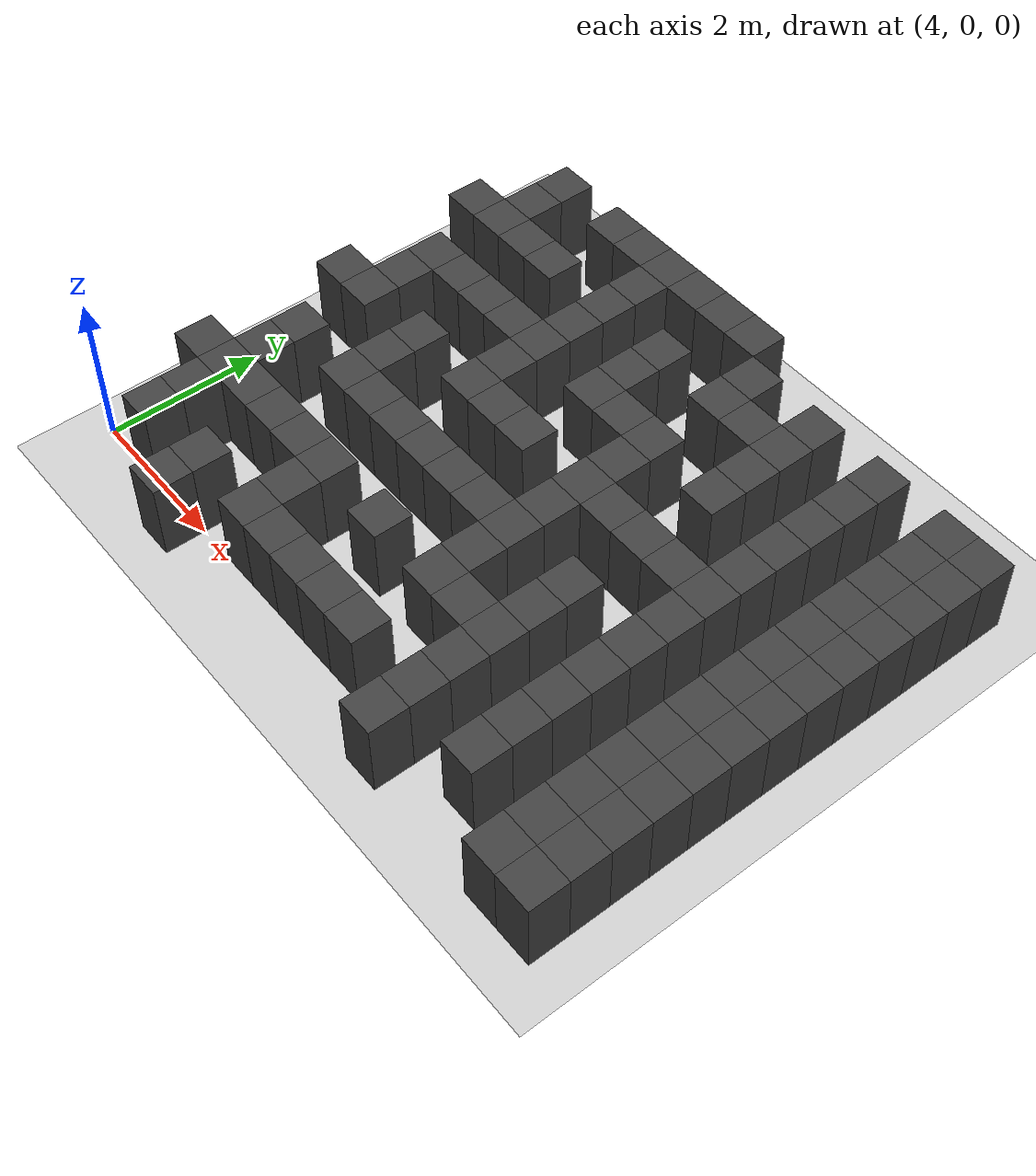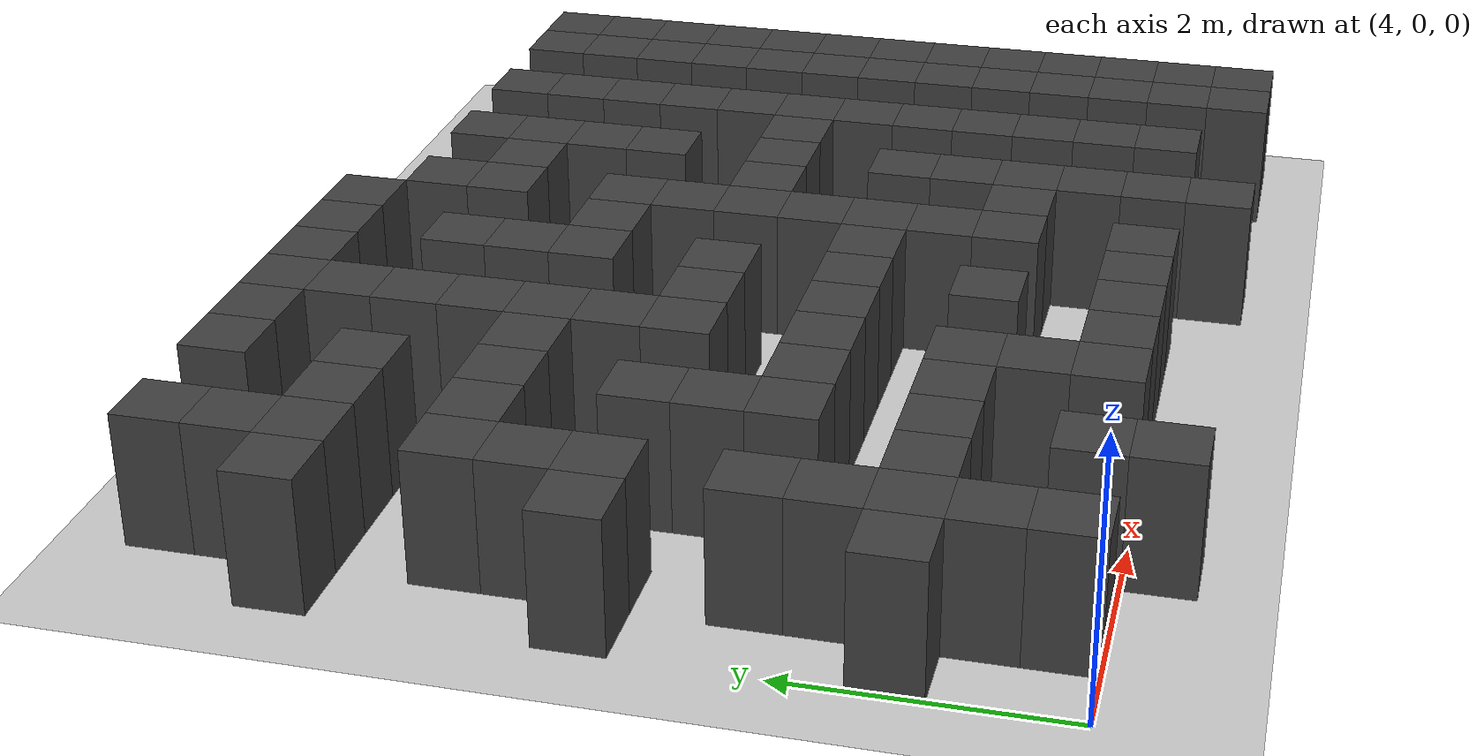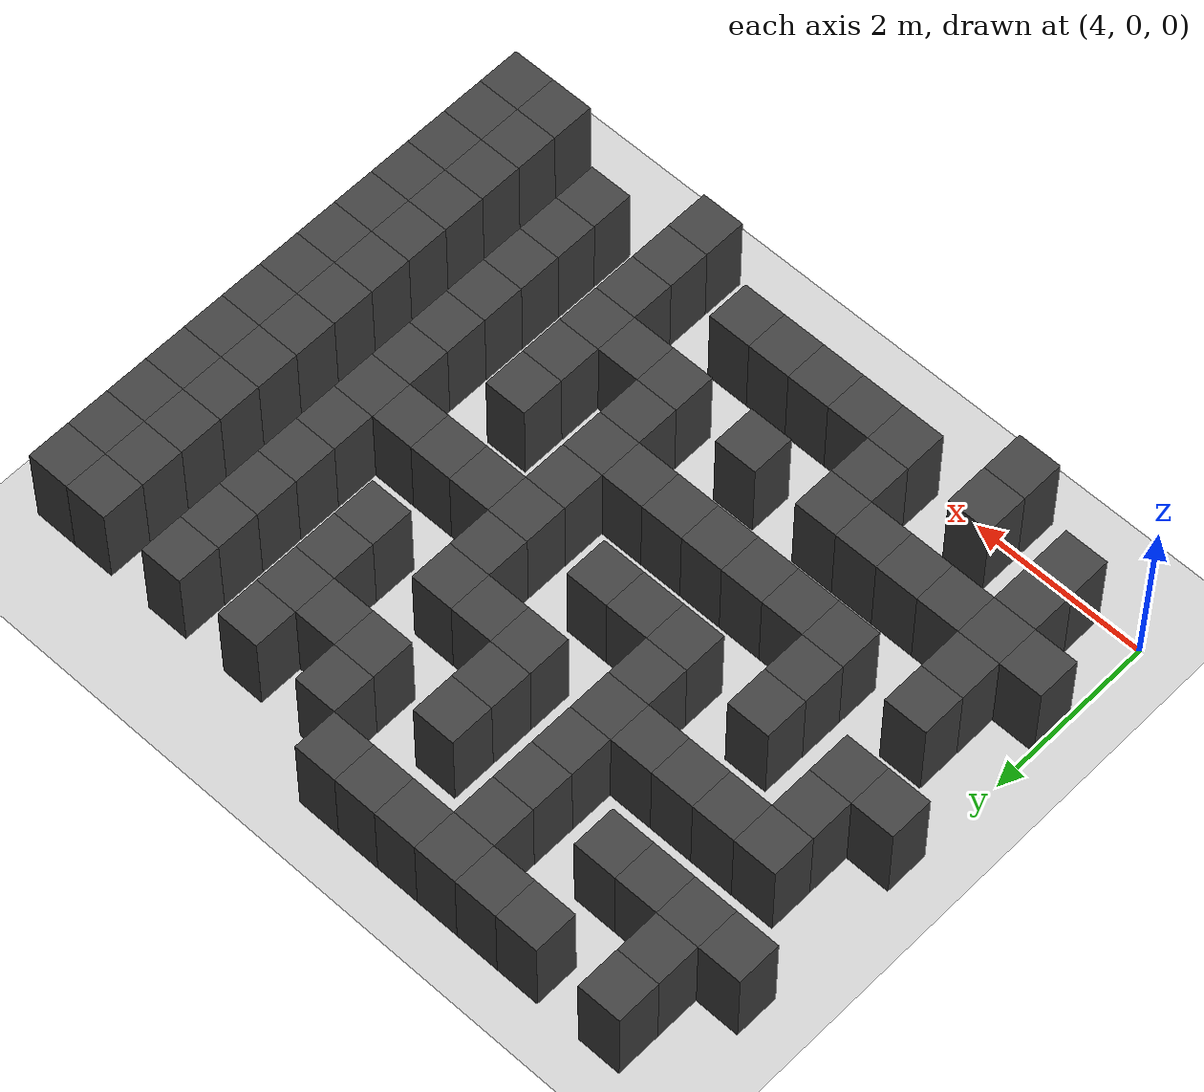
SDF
<sdf version="1.7">
 <world name="map_18814">
  <model name="ground_plane">
   <static>true</static>
   <link name="link">
    <collision name="collision">
     <geometry><plane><normal>0 0 1</normal><size>200 200</size></plane></geometry>
    </collision>
    <visual name="visual">
     <geometry><plane><normal>0 0 1</normal><size>200 200</size></plane></geometry>
     <material><ambient>0.8 0.8 0.8 1</ambient><diffuse>0.8 0.8 0.8 1</diffuse></material>
    </visual>
   </link>
  </model>
  <model name="maze_environment">
   <static>true</static>
   <link name="wall_333">
    <pose>4.750 6.250 0.500 0 0 0</pose>
    <collision name="col"><geometry><box><size>0.5 0.5 1.0</size></box></geometry></collision>
    <visual name="vis">
     <geometry><box><size>0.5 0.5 1.0</size></box></geometry>
     <material><ambient>0.15 0.15 0.15 1</ambient><diffuse>0.25 0.25 0.25 1</diffuse></material>
    </visual>
   </link>
   <link name="wall_334">
    <pose>5.750 6.250 0.500 0 0 0</pose>
    <collision name="col"><geometry><box><size>0.5 0.5 1.0</size></box></geometry></collision>
    <visual name="vis">
     <geometry><box><size>0.5 0.5 1.0</size></box></geometry>
     <material><ambient>0.15 0.15 0.15 1</ambient><diffuse>0.25 0.25 0.25 1</diffuse></material>
    </visual>
   </link>
   <link name="wall_335">
    <pose>6.250 6.250 0.500 0 0 0</pose>
    <collision name="col"><geometry><box><size>0.5 0.5 1.0</size></box></geometry></collision>
    <visual name="vis">
     <geometry><box><size>0.5 0.5 1.0</size></box></geometry>
     <material><ambient>0.15 0.15 0.15 1</ambient><diffuse>0.25 0.25 0.25 1</diffuse></material>
    </visual>
   </link>
   <link name="wall_336">
    <pose>6.750 6.250 0.500 0 0 0</pose>
    <collision name="col"><geometry><box><size>0.5 0.5 1.0</size></box></geometry></collision>
    <visual name="vis">
     <geometry><box><size>0.5 0.5 1.0</size></box></geometry>
     <material><ambient>0.15 0.15 0.15 1</ambient><diffuse>0.25 0.25 0.25 1</diffuse></material>
    </visual>
   </link>
   <link name="wall_337">
    <pose>7.250 6.250 0.500 0 0 0</pose>
    <collision name="col"><geometry><box><size>0.5 0.5 1.0</size></box></geometry></collision>
    <visual name="vis">
     <geometry><box><size>0.5 0.5 1.0</size></box></geometry>
     <material><ambient>0.15 0.15 0.15 1</ambient><diffuse>0.25 0.25 0.25 1</diffuse></material>
    </visual>
   </link>
   <link name="wall_338">
    <pose>7.750 6.250 0.500 0 0 0</pose>
    <collision name="col"><geometry><box><size>0.5 0.5 1.0</size></box></geometry></collision>
    <visual name="vis">
     <geometry><box><size>0.5 0.5 1.0</size></box></geometry>
     <material><ambient>0.15 0.15 0.15 1</ambient><diffuse>0.25 0.25 0.25 1</diffuse></material>
    </visual>
   </link>
   <link name="wall_339">
    <pose>8.250 6.250 0.500 0 0 0</pose>
    <collision name="col"><geometry><box><size>0.5 0.5 1.0</size></box></geometry></collision>
    <visual name="vis">
     <geometry><box><size>0.5 0.5 1.0</size></box></geometry>
     <material><ambient>0.15 0.15 0.15 1</ambient><diffuse>0.25 0.25 0.25 1</diffuse></material>
    </visual>
   </link>
   <link name="wall_352">
    <pose>4.750 5.750 0.500 0 0 0</pose>
    <collision name="col"><geometry><box><size>0.5 0.5 1.0</size></box></geometry></collision>
    <visual name="vis">
     <geometry><box><size>0.5 0.5 1.0</size></box></geometry>
     <material><ambient>0.15 0.15 0.15 1</ambient><diffuse>0.25 0.25 0.25 1</diffuse></material>
    </visual>
   </link>
   <link name="wall_353">
    <pose>6.750 5.750 0.500 0 0 0</pose>
    <collision name="col"><geometry><box><size>0.5 0.5 1.0</size></box></geometry></collision>
    <visual name="vis">
     <geometry><box><size>0.5 0.5 1.0</size></box></geometry>
     <material><ambient>0.15 0.15 0.15 1</ambient><diffuse>0.25 0.25 0.25 1</diffuse></material>
    </visual>
   </link>
   <link name="wall_354">
    <pose>8.750 5.750 0.500 0 0 0</pose>
    <collision name="col"><geometry><box><size>0.5 0.5 1.0</size></box></geometry></collision>
    <visual name="vis">
     <geometry><box><size>0.5 0.5 1.0</size></box></geometry>
     <material><ambient>0.15 0.15 0.15 1</ambient><diffuse>0.25 0.25 0.25 1</diffuse></material>
    </visual>
   </link>
   <link name="wall_355">
    <pose>9.750 5.750 0.500 0 0 0</pose>
    <collision name="col"><geometry><box><size>0.5 0.5 1.0</size></box></geometry></collision>
    <visual name="vis">
     <geometry><box><size>0.5 0.5 1.0</size></box></geometry>
     <material><ambient>0.15 0.15 0.15 1</ambient><diffuse>0.25 0.25 0.25 1</diffuse></material>
    </visual>
   </link>
   <link name="wall_356">
    <pose>10.750 5.750 0.500 0 0 0</pose>
    <collision name="col"><geometry><box><size>0.5 0.5 1.0</size></box></geometry></collision>
    <visual name="vis">
     <geometry><box><size>0.5 0.5 1.0</size></box></geometry>
     <material><ambient>0.15 0.15 0.15 1</ambient><diffuse>0.25 0.25 0.25 1</diffuse></material>
    </visual>
   </link>
   <link name="wall_357">
    <pose>11.750 5.750 0.500 0 0 0</pose>
    <collision name="col"><geometry><box><size>0.5 0.5 1.0</size></box></geometry></collision>
    <visual name="vis">
     <geometry><box><size>0.5 0.5 1.0</size></box></geometry>
     <material><ambient>0.15 0.15 0.15 1</ambient><diffuse>0.25 0.25 0.25 1</diffuse></material>
    </visual>
   </link>
   <link name="wall_358">
    <pose>12.250 5.750 0.500 0 0 0</pose>
    <collision name="col"><geometry><box><size>0.5 0.5 1.0</size></box></geometry></collision>
    <visual name="vis">
     <geometry><box><size>0.5 0.5 1.0</size></box></geometry>
     <material><ambient>0.15 0.15 0.15 1</ambient><diffuse>0.25 0.25 0.25 1</diffuse></material>
    </visual>
   </link>
   <link name="wall_384">
    <pose>4.250 5.250 0.500 0 0 0</pose>
    <collision name="col"><geometry><box><size>0.5 0.5 1.0</size></box></geometry></collision>
    <visual name="vis">
     <geometry><box><size>0.5 0.5 1.0</size></box></geometry>
     <material><ambient>0.15 0.15 0.15 1</ambient><diffuse>0.25 0.25 0.25 1</diffuse></material>
    </visual>
   </link>
   <link name="wall_385">
    <pose>4.750 5.250 0.500 0 0 0</pose>
    <collision name="col"><geometry><box><size>0.5 0.5 1.0</size></box></geometry></collision>
    <visual name="vis">
     <geometry><box><size>0.5 0.5 1.0</size></box></geometry>
     <material><ambient>0.15 0.15 0.15 1</ambient><diffuse>0.25 0.25 0.25 1</diffuse></material>
    </visual>
   </link>
   <link name="wall_386">
    <pose>5.250 5.250 0.500 0 0 0</pose>
    <collision name="col"><geometry><box><size>0.5 0.5 1.0</size></box></geometry></collision>
    <visual name="vis">
     <geometry><box><size>0.5 0.5 1.0</size></box></geometry>
     <material><ambient>0.15 0.15 0.15 1</ambient><diffuse>0.25 0.25 0.25 1</diffuse></material>
    </visual>
   </link>
   <link name="wall_387">
    <pose>5.750 5.250 0.500 0 0 0</pose>
    <collision name="col"><geometry><box><size>0.5 0.5 1.0</size></box></geometry></collision>
    <visual name="vis">
     <geometry><box><size>0.5 0.5 1.0</size></box></geometry>
     <material><ambient>0.15 0.15 0.15 1</ambient><diffuse>0.25 0.25 0.25 1</diffuse></material>
    </visual>
   </link>
   <link name="wall_388">
    <pose>6.750 5.250 0.500 0 0 0</pose>
    <collision name="col"><geometry><box><size>0.5 0.5 1.0</size></box></geometry></collision>
    <visual name="vis">
     <geometry><box><size>0.5 0.5 1.0</size></box></geometry>
     <material><ambient>0.15 0.15 0.15 1</ambient><diffuse>0.25 0.25 0.25 1</diffuse></material>
    </visual>
   </link>
   <link name="wall_389">
    <pose>7.750 5.250 0.500 0 0 0</pose>
    <collision name="col"><geometry><box><size>0.5 0.5 1.0</size></box></geometry></collision>
    <visual name="vis">
     <geometry><box><size>0.5 0.5 1.0</size></box></geometry>
     <material><ambient>0.15 0.15 0.15 1</ambient><diffuse>0.25 0.25 0.25 1</diffuse></material>
    </visual>
   </link>
   <link name="wall_390">
    <pose>8.750 5.250 0.500 0 0 0</pose>
    <collision name="col"><geometry><box><size>0.5 0.5 1.0</size></box></geometry></collision>
    <visual name="vis">
     <geometry><box><size>0.5 0.5 1.0</size></box></geometry>
     <material><ambient>0.15 0.15 0.15 1</ambient><diffuse>0.25 0.25 0.25 1</diffuse></material>
    </visual>
   </link>
   <link name="wall_391">
    <pose>9.250 5.250 0.500 0 0 0</pose>
    <collision name="col"><geometry><box><size>0.5 0.5 1.0</size></box></geometry></collision>
    <visual name="vis">
     <geometry><box><size>0.5 0.5 1.0</size></box></geometry>
     <material><ambient>0.15 0.15 0.15 1</ambient><diffuse>0.25 0.25 0.25 1</diffuse></material>
    </visual>
   </link>
   <link name="wall_392">
    <pose>9.750 5.250 0.500 0 0 0</pose>
    <collision name="col"><geometry><box><size>0.5 0.5 1.0</size></box></geometry></collision>
    <visual name="vis">
     <geometry><box><size>0.5 0.5 1.0</size></box></geometry>
     <material><ambient>0.15 0.15 0.15 1</ambient><diffuse>0.25 0.25 0.25 1</diffuse></material>
    </visual>
   </link>
   <link name="wall_393">
    <pose>10.750 5.250 0.500 0 0 0</pose>
    <collision name="col"><geometry><box><size>0.5 0.5 1.0</size></box></geometry></collision>
    <visual name="vis">
     <geometry><box><size>0.5 0.5 1.0</size></box></geometry>
     <material><ambient>0.15 0.15 0.15 1</ambient><diffuse>0.25 0.25 0.25 1</diffuse></material>
    </visual>
   </link>
   <link name="wall_394">
    <pose>11.750 5.250 0.500 0 0 0</pose>
    <collision name="col"><geometry><box><size>0.5 0.5 1.0</size></box></geometry></collision>
    <visual name="vis">
     <geometry><box><size>0.5 0.5 1.0</size></box></geometry>
     <material><ambient>0.15 0.15 0.15 1</ambient><diffuse>0.25 0.25 0.25 1</diffuse></material>
    </visual>
   </link>
   <link name="wall_395">
    <pose>12.250 5.250 0.500 0 0 0</pose>
    <collision name="col"><geometry><box><size>0.5 0.5 1.0</size></box></geometry></collision>
    <visual name="vis">
     <geometry><box><size>0.5 0.5 1.0</size></box></geometry>
     <material><ambient>0.15 0.15 0.15 1</ambient><diffuse>0.25 0.25 0.25 1</diffuse></material>
    </visual>
   </link>
   <link name="wall_404">
    <pose>6.750 4.750 0.500 0 0 0</pose>
    <collision name="col"><geometry><box><size>0.5 0.5 1.0</size></box></geometry></collision>
    <visual name="vis">
     <geometry><box><size>0.5 0.5 1.0</size></box></geometry>
     <material><ambient>0.15 0.15 0.15 1</ambient><diffuse>0.25 0.25 0.25 1</diffuse></material>
    </visual>
   </link>
   <link name="wall_405">
    <pose>7.750 4.750 0.500 0 0 0</pose>
    <collision name="col"><geometry><box><size>0.5 0.5 1.0</size></box></geometry></collision>
    <visual name="vis">
     <geometry><box><size>0.5 0.5 1.0</size></box></geometry>
     <material><ambient>0.15 0.15 0.15 1</ambient><diffuse>0.25 0.25 0.25 1</diffuse></material>
    </visual>
   </link>
   <link name="wall_406">
    <pose>9.750 4.750 0.500 0 0 0</pose>
    <collision name="col"><geometry><box><size>0.5 0.5 1.0</size></box></geometry></collision>
    <visual name="vis">
     <geometry><box><size>0.5 0.5 1.0</size></box></geometry>
     <material><ambient>0.15 0.15 0.15 1</ambient><diffuse>0.25 0.25 0.25 1</diffuse></material>
    </visual>
   </link>
   <link name="wall_407">
    <pose>10.750 4.750 0.500 0 0 0</pose>
    <collision name="col"><geometry><box><size>0.5 0.5 1.0</size></box></geometry></collision>
    <visual name="vis">
     <geometry><box><size>0.5 0.5 1.0</size></box></geometry>
     <material><ambient>0.15 0.15 0.15 1</ambient><diffuse>0.25 0.25 0.25 1</diffuse></material>
    </visual>
   </link>
   <link name="wall_408">
    <pose>11.750 4.750 0.500 0 0 0</pose>
    <collision name="col"><geometry><box><size>0.5 0.5 1.0</size></box></geometry></collision>
    <visual name="vis">
     <geometry><box><size>0.5 0.5 1.0</size></box></geometry>
     <material><ambient>0.15 0.15 0.15 1</ambient><diffuse>0.25 0.25 0.25 1</diffuse></material>
    </visual>
   </link>
   <link name="wall_409">
    <pose>12.250 4.750 0.500 0 0 0</pose>
    <collision name="col"><geometry><box><size>0.5 0.5 1.0</size></box></geometry></collision>
    <visual name="vis">
     <geometry><box><size>0.5 0.5 1.0</size></box></geometry>
     <material><ambient>0.15 0.15 0.15 1</ambient><diffuse>0.25 0.25 0.25 1</diffuse></material>
    </visual>
   </link>
   <link name="wall_434">
    <pose>4.750 4.250 0.500 0 0 0</pose>
    <collision name="col"><geometry><box><size>0.5 0.5 1.0</size></box></geometry></collision>
    <visual name="vis">
     <geometry><box><size>0.5 0.5 1.0</size></box></geometry>
     <material><ambient>0.15 0.15 0.15 1</ambient><diffuse>0.25 0.25 0.25 1</diffuse></material>
    </visual>
   </link>
   <link name="wall_435">
    <pose>5.250 4.250 0.500 0 0 0</pose>
    <collision name="col"><geometry><box><size>0.5 0.5 1.0</size></box></geometry></collision>
    <visual name="vis">
     <geometry><box><size>0.5 0.5 1.0</size></box></geometry>
     <material><ambient>0.15 0.15 0.15 1</ambient><diffuse>0.25 0.25 0.25 1</diffuse></material>
    </visual>
   </link>
   <link name="wall_436">
    <pose>5.750 4.250 0.500 0 0 0</pose>
    <collision name="col"><geometry><box><size>0.5 0.5 1.0</size></box></geometry></collision>
    <visual name="vis">
     <geometry><box><size>0.5 0.5 1.0</size></box></geometry>
     <material><ambient>0.15 0.15 0.15 1</ambient><diffuse>0.25 0.25 0.25 1</diffuse></material>
    </visual>
   </link>
   <link name="wall_437">
    <pose>6.250 4.250 0.500 0 0 0</pose>
    <collision name="col"><geometry><box><size>0.5 0.5 1.0</size></box></geometry></collision>
    <visual name="vis">
     <geometry><box><size>0.5 0.5 1.0</size></box></geometry>
     <material><ambient>0.15 0.15 0.15 1</ambient><diffuse>0.25 0.25 0.25 1</diffuse></material>
    </visual>
   </link>
   <link name="wall_438">
    <pose>6.750 4.250 0.500 0 0 0</pose>
    <collision name="col"><geometry><box><size>0.5 0.5 1.0</size></box></geometry></collision>
    <visual name="vis">
     <geometry><box><size>0.5 0.5 1.0</size></box></geometry>
     <material><ambient>0.15 0.15 0.15 1</ambient><diffuse>0.25 0.25 0.25 1</diffuse></material>
    </visual>
   </link>
   <link name="wall_439">
    <pose>7.750 4.250 0.500 0 0 0</pose>
    <collision name="col"><geometry><box><size>0.5 0.5 1.0</size></box></geometry></collision>
    <visual name="vis">
     <geometry><box><size>0.5 0.5 1.0</size></box></geometry>
     <material><ambient>0.15 0.15 0.15 1</ambient><diffuse>0.25 0.25 0.25 1</diffuse></material>
    </visual>
   </link>
   <link name="wall_440">
    <pose>8.250 4.250 0.500 0 0 0</pose>
    <collision name="col"><geometry><box><size>0.5 0.5 1.0</size></box></geometry></collision>
    <visual name="vis">
     <geometry><box><size>0.5 0.5 1.0</size></box></geometry>
     <material><ambient>0.15 0.15 0.15 1</ambient><diffuse>0.25 0.25 0.25 1</diffuse></material>
    </visual>
   </link>
   <link name="wall_441">
    <pose>8.750 4.250 0.500 0 0 0</pose>
    <collision name="col"><geometry><box><size>0.5 0.5 1.0</size></box></geometry></collision>
    <visual name="vis">
     <geometry><box><size>0.5 0.5 1.0</size></box></geometry>
     <material><ambient>0.15 0.15 0.15 1</ambient><diffuse>0.25 0.25 0.25 1</diffuse></material>
    </visual>
   </link>
   <link name="wall_442">
    <pose>9.750 4.250 0.500 0 0 0</pose>
    <collision name="col"><geometry><box><size>0.5 0.5 1.0</size></box></geometry></collision>
    <visual name="vis">
     <geometry><box><size>0.5 0.5 1.0</size></box></geometry>
     <material><ambient>0.15 0.15 0.15 1</ambient><diffuse>0.25 0.25 0.25 1</diffuse></material>
    </visual>
   </link>
   <link name="wall_443">
    <pose>10.750 4.250 0.500 0 0 0</pose>
    <collision name="col"><geometry><box><size>0.5 0.5 1.0</size></box></geometry></collision>
    <visual name="vis">
     <geometry><box><size>0.5 0.5 1.0</size></box></geometry>
     <material><ambient>0.15 0.15 0.15 1</ambient><diffuse>0.25 0.25 0.25 1</diffuse></material>
    </visual>
   </link>
   <link name="wall_444">
    <pose>11.750 4.250 0.500 0 0 0</pose>
    <collision name="col"><geometry><box><size>0.5 0.5 1.0</size></box></geometry></collision>
    <visual name="vis">
     <geometry><box><size>0.5 0.5 1.0</size></box></geometry>
     <material><ambient>0.15 0.15 0.15 1</ambient><diffuse>0.25 0.25 0.25 1</diffuse></material>
    </visual>
   </link>
   <link name="wall_445">
    <pose>12.250 4.250 0.500 0 0 0</pose>
    <collision name="col"><geometry><box><size>0.5 0.5 1.0</size></box></geometry></collision>
    <visual name="vis">
     <geometry><box><size>0.5 0.5 1.0</size></box></geometry>
     <material><ambient>0.15 0.15 0.15 1</ambient><diffuse>0.25 0.25 0.25 1</diffuse></material>
    </visual>
   </link>
   <link name="wall_455">
    <pose>4.750 3.750 0.500 0 0 0</pose>
    <collision name="col"><geometry><box><size>0.5 0.5 1.0</size></box></geometry></collision>
    <visual name="vis">
     <geometry><box><size>0.5 0.5 1.0</size></box></geometry>
     <material><ambient>0.15 0.15 0.15 1</ambient><diffuse>0.25 0.25 0.25 1</diffuse></material>
    </visual>
   </link>
   <link name="wall_456">
    <pose>6.750 3.750 0.500 0 0 0</pose>
    <collision name="col"><geometry><box><size>0.5 0.5 1.0</size></box></geometry></collision>
    <visual name="vis">
     <geometry><box><size>0.5 0.5 1.0</size></box></geometry>
     <material><ambient>0.15 0.15 0.15 1</ambient><diffuse>0.25 0.25 0.25 1</diffuse></material>
    </visual>
   </link>
   <link name="wall_457">
    <pose>8.750 3.750 0.500 0 0 0</pose>
    <collision name="col"><geometry><box><size>0.5 0.5 1.0</size></box></geometry></collision>
    <visual name="vis">
     <geometry><box><size>0.5 0.5 1.0</size></box></geometry>
     <material><ambient>0.15 0.15 0.15 1</ambient><diffuse>0.25 0.25 0.25 1</diffuse></material>
    </visual>
   </link>
   <link name="wall_458">
    <pose>10.750 3.750 0.500 0 0 0</pose>
    <collision name="col"><geometry><box><size>0.5 0.5 1.0</size></box></geometry></collision>
    <visual name="vis">
     <geometry><box><size>0.5 0.5 1.0</size></box></geometry>
     <material><ambient>0.15 0.15 0.15 1</ambient><diffuse>0.25 0.25 0.25 1</diffuse></material>
    </visual>
   </link>
   <link name="wall_459">
    <pose>11.750 3.750 0.500 0 0 0</pose>
    <collision name="col"><geometry><box><size>0.5 0.5 1.0</size></box></geometry></collision>
    <visual name="vis">
     <geometry><box><size>0.5 0.5 1.0</size></box></geometry>
     <material><ambient>0.15 0.15 0.15 1</ambient><diffuse>0.25 0.25 0.25 1</diffuse></material>
    </visual>
   </link>
   <link name="wall_460">
    <pose>12.250 3.750 0.500 0 0 0</pose>
    <collision name="col"><geometry><box><size>0.5 0.5 1.0</size></box></geometry></collision>
    <visual name="vis">
     <geometry><box><size>0.5 0.5 1.0</size></box></geometry>
     <material><ambient>0.15 0.15 0.15 1</ambient><diffuse>0.25 0.25 0.25 1</diffuse></material>
    </visual>
   </link>
   <link name="wall_484">
    <pose>4.250 3.250 0.500 0 0 0</pose>
    <collision name="col"><geometry><box><size>0.5 0.5 1.0</size></box></geometry></collision>
    <visual name="vis">
     <geometry><box><size>0.5 0.5 1.0</size></box></geometry>
     <material><ambient>0.15 0.15 0.15 1</ambient><diffuse>0.25 0.25 0.25 1</diffuse></material>
    </visual>
   </link>
   <link name="wall_485">
    <pose>4.750 3.250 0.500 0 0 0</pose>
    <collision name="col"><geometry><box><size>0.5 0.5 1.0</size></box></geometry></collision>
    <visual name="vis">
     <geometry><box><size>0.5 0.5 1.0</size></box></geometry>
     <material><ambient>0.15 0.15 0.15 1</ambient><diffuse>0.25 0.25 0.25 1</diffuse></material>
    </visual>
   </link>
   <link name="wall_486">
    <pose>5.750 3.250 0.500 0 0 0</pose>
    <collision name="col"><geometry><box><size>0.5 0.5 1.0</size></box></geometry></collision>
    <visual name="vis">
     <geometry><box><size>0.5 0.5 1.0</size></box></geometry>
     <material><ambient>0.15 0.15 0.15 1</ambient><diffuse>0.25 0.25 0.25 1</diffuse></material>
    </visual>
   </link>
   <link name="wall_487">
    <pose>6.750 3.250 0.500 0 0 0</pose>
    <collision name="col"><geometry><box><size>0.5 0.5 1.0</size></box></geometry></collision>
    <visual name="vis">
     <geometry><box><size>0.5 0.5 1.0</size></box></geometry>
     <material><ambient>0.15 0.15 0.15 1</ambient><diffuse>0.25 0.25 0.25 1</diffuse></material>
    </visual>
   </link>
   <link name="wall_488">
    <pose>7.250 3.250 0.500 0 0 0</pose>
    <collision name="col"><geometry><box><size>0.5 0.5 1.0</size></box></geometry></collision>
    <visual name="vis">
     <geometry><box><size>0.5 0.5 1.0</size></box></geometry>
     <material><ambient>0.15 0.15 0.15 1</ambient><diffuse>0.25 0.25 0.25 1</diffuse></material>
    </visual>
   </link>
   <link name="wall_489">
    <pose>7.750 3.250 0.500 0 0 0</pose>
    <collision name="col"><geometry><box><size>0.5 0.5 1.0</size></box></geometry></collision>
    <visual name="vis">
     <geometry><box><size>0.5 0.5 1.0</size></box></geometry>
     <material><ambient>0.15 0.15 0.15 1</ambient><diffuse>0.25 0.25 0.25 1</diffuse></material>
    </visual>
   </link>
   <link name="wall_490">
    <pose>8.750 3.250 0.500 0 0 0</pose>
    <collision name="col"><geometry><box><size>0.5 0.5 1.0</size></box></geometry></collision>
    <visual name="vis">
     <geometry><box><size>0.5 0.5 1.0</size></box></geometry>
     <material><ambient>0.15 0.15 0.15 1</ambient><diffuse>0.25 0.25 0.25 1</diffuse></material>
    </visual>
   </link>
   <link name="wall_491">
    <pose>9.250 3.250 0.500 0 0 0</pose>
    <collision name="col"><geometry><box><size>0.5 0.5 1.0</size></box></geometry></collision>
    <visual name="vis">
     <geometry><box><size>0.5 0.5 1.0</size></box></geometry>
     <material><ambient>0.15 0.15 0.15 1</ambient><diffuse>0.25 0.25 0.25 1</diffuse></material>
    </visual>
   </link>
   <link name="wall_492">
    <pose>9.750 3.250 0.500 0 0 0</pose>
    <collision name="col"><geometry><box><size>0.5 0.5 1.0</size></box></geometry></collision>
    <visual name="vis">
     <geometry><box><size>0.5 0.5 1.0</size></box></geometry>
     <material><ambient>0.15 0.15 0.15 1</ambient><diffuse>0.25 0.25 0.25 1</diffuse></material>
    </visual>
   </link>
   <link name="wall_493">
    <pose>10.250 3.250 0.500 0 0 0</pose>
    <collision name="col"><geometry><box><size>0.5 0.5 1.0</size></box></geometry></collision>
    <visual name="vis">
     <geometry><box><size>0.5 0.5 1.0</size></box></geometry>
     <material><ambient>0.15 0.15 0.15 1</ambient><diffuse>0.25 0.25 0.25 1</diffuse></material>
    </visual>
   </link>
   <link name="wall_494">
    <pose>10.750 3.250 0.500 0 0 0</pose>
    <collision name="col"><geometry><box><size>0.5 0.5 1.0</size></box></geometry></collision>
    <visual name="vis">
     <geometry><box><size>0.5 0.5 1.0</size></box></geometry>
     <material><ambient>0.15 0.15 0.15 1</ambient><diffuse>0.25 0.25 0.25 1</diffuse></material>
    </visual>
   </link>
   <link name="wall_495">
    <pose>11.750 3.250 0.500 0 0 0</pose>
    <collision name="col"><geometry><box><size>0.5 0.5 1.0</size></box></geometry></collision>
    <visual name="vis">
     <geometry><box><size>0.5 0.5 1.0</size></box></geometry>
     <material><ambient>0.15 0.15 0.15 1</ambient><diffuse>0.25 0.25 0.25 1</diffuse></material>
    </visual>
   </link>
   <link name="wall_496">
    <pose>12.250 3.250 0.500 0 0 0</pose>
    <collision name="col"><geometry><box><size>0.5 0.5 1.0</size></box></geometry></collision>
    <visual name="vis">
     <geometry><box><size>0.5 0.5 1.0</size></box></geometry>
     <material><ambient>0.15 0.15 0.15 1</ambient><diffuse>0.25 0.25 0.25 1</diffuse></material>
    </visual>
   </link>
   <link name="wall_508">
    <pose>5.750 2.750 0.500 0 0 0</pose>
    <collision name="col"><geometry><box><size>0.5 0.5 1.0</size></box></geometry></collision>
    <visual name="vis">
     <geometry><box><size>0.5 0.5 1.0</size></box></geometry>
     <material><ambient>0.15 0.15 0.15 1</ambient><diffuse>0.25 0.25 0.25 1</diffuse></material>
    </visual>
   </link>
   <link name="wall_509">
    <pose>8.750 2.750 0.500 0 0 0</pose>
    <collision name="col"><geometry><box><size>0.5 0.5 1.0</size></box></geometry></collision>
    <visual name="vis">
     <geometry><box><size>0.5 0.5 1.0</size></box></geometry>
     <material><ambient>0.15 0.15 0.15 1</ambient><diffuse>0.25 0.25 0.25 1</diffuse></material>
    </visual>
   </link>
   <link name="wall_510">
    <pose>10.750 2.750 0.500 0 0 0</pose>
    <collision name="col"><geometry><box><size>0.5 0.5 1.0</size></box></geometry></collision>
    <visual name="vis">
     <geometry><box><size>0.5 0.5 1.0</size></box></geometry>
     <material><ambient>0.15 0.15 0.15 1</ambient><diffuse>0.25 0.25 0.25 1</diffuse></material>
    </visual>
   </link>
   <link name="wall_511">
    <pose>11.750 2.750 0.500 0 0 0</pose>
    <collision name="col"><geometry><box><size>0.5 0.5 1.0</size></box></geometry></collision>
    <visual name="vis">
     <geometry><box><size>0.5 0.5 1.0</size></box></geometry>
     <material><ambient>0.15 0.15 0.15 1</ambient><diffuse>0.25 0.25 0.25 1</diffuse></material>
    </visual>
   </link>
   <link name="wall_512">
    <pose>12.250 2.750 0.500 0 0 0</pose>
    <collision name="col"><geometry><box><size>0.5 0.5 1.0</size></box></geometry></collision>
    <visual name="vis">
     <geometry><box><size>0.5 0.5 1.0</size></box></geometry>
     <material><ambient>0.15 0.15 0.15 1</ambient><diffuse>0.25 0.25 0.25 1</diffuse></material>
    </visual>
   </link>
   <link name="wall_534">
    <pose>4.750 2.250 0.500 0 0 0</pose>
    <collision name="col"><geometry><box><size>0.5 0.5 1.0</size></box></geometry></collision>
    <visual name="vis">
     <geometry><box><size>0.5 0.5 1.0</size></box></geometry>
     <material><ambient>0.15 0.15 0.15 1</ambient><diffuse>0.25 0.25 0.25 1</diffuse></material>
    </visual>
   </link>
   <link name="wall_535">
    <pose>5.750 2.250 0.500 0 0 0</pose>
    <collision name="col"><geometry><box><size>0.5 0.5 1.0</size></box></geometry></collision>
    <visual name="vis">
     <geometry><box><size>0.5 0.5 1.0</size></box></geometry>
     <material><ambient>0.15 0.15 0.15 1</ambient><diffuse>0.25 0.25 0.25 1</diffuse></material>
    </visual>
   </link>
   <link name="wall_536">
    <pose>6.250 2.250 0.500 0 0 0</pose>
    <collision name="col"><geometry><box><size>0.5 0.5 1.0</size></box></geometry></collision>
    <visual name="vis">
     <geometry><box><size>0.5 0.5 1.0</size></box></geometry>
     <material><ambient>0.15 0.15 0.15 1</ambient><diffuse>0.25 0.25 0.25 1</diffuse></material>
    </visual>
   </link>
   <link name="wall_537">
    <pose>6.750 2.250 0.500 0 0 0</pose>
    <collision name="col"><geometry><box><size>0.5 0.5 1.0</size></box></geometry></collision>
    <visual name="vis">
     <geometry><box><size>0.5 0.5 1.0</size></box></geometry>
     <material><ambient>0.15 0.15 0.15 1</ambient><diffuse>0.25 0.25 0.25 1</diffuse></material>
    </visual>
   </link>
   <link name="wall_538">
    <pose>7.250 2.250 0.500 0 0 0</pose>
    <collision name="col"><geometry><box><size>0.5 0.5 1.0</size></box></geometry></collision>
    <visual name="vis">
     <geometry><box><size>0.5 0.5 1.0</size></box></geometry>
     <material><ambient>0.15 0.15 0.15 1</ambient><diffuse>0.25 0.25 0.25 1</diffuse></material>
    </visual>
   </link>
   <link name="wall_539">
    <pose>7.750 2.250 0.500 0 0 0</pose>
    <collision name="col"><geometry><box><size>0.5 0.5 1.0</size></box></geometry></collision>
    <visual name="vis">
     <geometry><box><size>0.5 0.5 1.0</size></box></geometry>
     <material><ambient>0.15 0.15 0.15 1</ambient><diffuse>0.25 0.25 0.25 1</diffuse></material>
    </visual>
   </link>
   <link name="wall_540">
    <pose>8.250 2.250 0.500 0 0 0</pose>
    <collision name="col"><geometry><box><size>0.5 0.5 1.0</size></box></geometry></collision>
    <visual name="vis">
     <geometry><box><size>0.5 0.5 1.0</size></box></geometry>
     <material><ambient>0.15 0.15 0.15 1</ambient><diffuse>0.25 0.25 0.25 1</diffuse></material>
    </visual>
   </link>
   <link name="wall_541">
    <pose>8.750 2.250 0.500 0 0 0</pose>
    <collision name="col"><geometry><box><size>0.5 0.5 1.0</size></box></geometry></collision>
    <visual name="vis">
     <geometry><box><size>0.5 0.5 1.0</size></box></geometry>
     <material><ambient>0.15 0.15 0.15 1</ambient><diffuse>0.25 0.25 0.25 1</diffuse></material>
    </visual>
   </link>
   <link name="wall_542">
    <pose>9.750 2.250 0.500 0 0 0</pose>
    <collision name="col"><geometry><box><size>0.5 0.5 1.0</size></box></geometry></collision>
    <visual name="vis">
     <geometry><box><size>0.5 0.5 1.0</size></box></geometry>
     <material><ambient>0.15 0.15 0.15 1</ambient><diffuse>0.25 0.25 0.25 1</diffuse></material>
    </visual>
   </link>
   <link name="wall_543">
    <pose>10.750 2.250 0.500 0 0 0</pose>
    <collision name="col"><geometry><box><size>0.5 0.5 1.0</size></box></geometry></collision>
    <visual name="vis">
     <geometry><box><size>0.5 0.5 1.0</size></box></geometry>
     <material><ambient>0.15 0.15 0.15 1</ambient><diffuse>0.25 0.25 0.25 1</diffuse></material>
    </visual>
   </link>
   <link name="wall_544">
    <pose>11.750 2.250 0.500 0 0 0</pose>
    <collision name="col"><geometry><box><size>0.5 0.5 1.0</size></box></geometry></collision>
    <visual name="vis">
     <geometry><box><size>0.5 0.5 1.0</size></box></geometry>
     <material><ambient>0.15 0.15 0.15 1</ambient><diffuse>0.25 0.25 0.25 1</diffuse></material>
    </visual>
   </link>
   <link name="wall_545">
    <pose>12.250 2.250 0.500 0 0 0</pose>
    <collision name="col"><geometry><box><size>0.5 0.5 1.0</size></box></geometry></collision>
    <visual name="vis">
     <geometry><box><size>0.5 0.5 1.0</size></box></geometry>
     <material><ambient>0.15 0.15 0.15 1</ambient><diffuse>0.25 0.25 0.25 1</diffuse></material>
    </visual>
   </link>
   <link name="wall_554">
    <pose>4.750 1.750 0.500 0 0 0</pose>
    <collision name="col"><geometry><box><size>0.5 0.5 1.0</size></box></geometry></collision>
    <visual name="vis">
     <geometry><box><size>0.5 0.5 1.0</size></box></geometry>
     <material><ambient>0.15 0.15 0.15 1</ambient><diffuse>0.25 0.25 0.25 1</diffuse></material>
    </visual>
   </link>
   <link name="wall_555">
    <pose>8.750 1.750 0.500 0 0 0</pose>
    <collision name="col"><geometry><box><size>0.5 0.5 1.0</size></box></geometry></collision>
    <visual name="vis">
     <geometry><box><size>0.5 0.5 1.0</size></box></geometry>
     <material><ambient>0.15 0.15 0.15 1</ambient><diffuse>0.25 0.25 0.25 1</diffuse></material>
    </visual>
   </link>
   <link name="wall_556">
    <pose>9.750 1.750 0.500 0 0 0</pose>
    <collision name="col"><geometry><box><size>0.5 0.5 1.0</size></box></geometry></collision>
    <visual name="vis">
     <geometry><box><size>0.5 0.5 1.0</size></box></geometry>
     <material><ambient>0.15 0.15 0.15 1</ambient><diffuse>0.25 0.25 0.25 1</diffuse></material>
    </visual>
   </link>
   <link name="wall_557">
    <pose>10.750 1.750 0.500 0 0 0</pose>
    <collision name="col"><geometry><box><size>0.5 0.5 1.0</size></box></geometry></collision>
    <visual name="vis">
     <geometry><box><size>0.5 0.5 1.0</size></box></geometry>
     <material><ambient>0.15 0.15 0.15 1</ambient><diffuse>0.25 0.25 0.25 1</diffuse></material>
    </visual>
   </link>
   <link name="wall_558">
    <pose>11.750 1.750 0.500 0 0 0</pose>
    <collision name="col"><geometry><box><size>0.5 0.5 1.0</size></box></geometry></collision>
    <visual name="vis">
     <geometry><box><size>0.5 0.5 1.0</size></box></geometry>
     <material><ambient>0.15 0.15 0.15 1</ambient><diffuse>0.25 0.25 0.25 1</diffuse></material>
    </visual>
   </link>
   <link name="wall_559">
    <pose>12.250 1.750 0.500 0 0 0</pose>
    <collision name="col"><geometry><box><size>0.5 0.5 1.0</size></box></geometry></collision>
    <visual name="vis">
     <geometry><box><size>0.5 0.5 1.0</size></box></geometry>
     <material><ambient>0.15 0.15 0.15 1</ambient><diffuse>0.25 0.25 0.25 1</diffuse></material>
    </visual>
   </link>
   <link name="wall_584">
    <pose>4.250 1.250 0.500 0 0 0</pose>
    <collision name="col"><geometry><box><size>0.5 0.5 1.0</size></box></geometry></collision>
    <visual name="vis">
     <geometry><box><size>0.5 0.5 1.0</size></box></geometry>
     <material><ambient>0.15 0.15 0.15 1</ambient><diffuse>0.25 0.25 0.25 1</diffuse></material>
    </visual>
   </link>
   <link name="wall_585">
    <pose>4.750 1.250 0.500 0 0 0</pose>
    <collision name="col"><geometry><box><size>0.5 0.5 1.0</size></box></geometry></collision>
    <visual name="vis">
     <geometry><box><size>0.5 0.5 1.0</size></box></geometry>
     <material><ambient>0.15 0.15 0.15 1</ambient><diffuse>0.25 0.25 0.25 1</diffuse></material>
    </visual>
   </link>
   <link name="wall_586">
    <pose>5.250 1.250 0.500 0 0 0</pose>
    <collision name="col"><geometry><box><size>0.5 0.5 1.0</size></box></geometry></collision>
    <visual name="vis">
     <geometry><box><size>0.5 0.5 1.0</size></box></geometry>
     <material><ambient>0.15 0.15 0.15 1</ambient><diffuse>0.25 0.25 0.25 1</diffuse></material>
    </visual>
   </link>
   <link name="wall_587">
    <pose>5.750 1.250 0.500 0 0 0</pose>
    <collision name="col"><geometry><box><size>0.5 0.5 1.0</size></box></geometry></collision>
    <visual name="vis">
     <geometry><box><size>0.5 0.5 1.0</size></box></geometry>
     <material><ambient>0.15 0.15 0.15 1</ambient><diffuse>0.25 0.25 0.25 1</diffuse></material>
    </visual>
   </link>
   <link name="wall_588">
    <pose>6.250 1.250 0.500 0 0 0</pose>
    <collision name="col"><geometry><box><size>0.5 0.5 1.0</size></box></geometry></collision>
    <visual name="vis">
     <geometry><box><size>0.5 0.5 1.0</size></box></geometry>
     <material><ambient>0.15 0.15 0.15 1</ambient><diffuse>0.25 0.25 0.25 1</diffuse></material>
    </visual>
   </link>
   <link name="wall_589">
    <pose>6.750 1.250 0.500 0 0 0</pose>
    <collision name="col"><geometry><box><size>0.5 0.5 1.0</size></box></geometry></collision>
    <visual name="vis">
     <geometry><box><size>0.5 0.5 1.0</size></box></geometry>
     <material><ambient>0.15 0.15 0.15 1</ambient><diffuse>0.25 0.25 0.25 1</diffuse></material>
    </visual>
   </link>
   <link name="wall_590">
    <pose>7.750 1.250 0.500 0 0 0</pose>
    <collision name="col"><geometry><box><size>0.5 0.5 1.0</size></box></geometry></collision>
    <visual name="vis">
     <geometry><box><size>0.5 0.5 1.0</size></box></geometry>
     <material><ambient>0.15 0.15 0.15 1</ambient><diffuse>0.25 0.25 0.25 1</diffuse></material>
    </visual>
   </link>
   <link name="wall_591">
    <pose>8.750 1.250 0.500 0 0 0</pose>
    <collision name="col"><geometry><box><size>0.5 0.5 1.0</size></box></geometry></collision>
    <visual name="vis">
     <geometry><box><size>0.5 0.5 1.0</size></box></geometry>
     <material><ambient>0.15 0.15 0.15 1</ambient><diffuse>0.25 0.25 0.25 1</diffuse></material>
    </visual>
   </link>
   <link name="wall_592">
    <pose>9.250 1.250 0.500 0 0 0</pose>
    <collision name="col"><geometry><box><size>0.5 0.5 1.0</size></box></geometry></collision>
    <visual name="vis">
     <geometry><box><size>0.5 0.5 1.0</size></box></geometry>
     <material><ambient>0.15 0.15 0.15 1</ambient><diffuse>0.25 0.25 0.25 1</diffuse></material>
    </visual>
   </link>
   <link name="wall_593">
    <pose>9.750 1.250 0.500 0 0 0</pose>
    <collision name="col"><geometry><box><size>0.5 0.5 1.0</size></box></geometry></collision>
    <visual name="vis">
     <geometry><box><size>0.5 0.5 1.0</size></box></geometry>
     <material><ambient>0.15 0.15 0.15 1</ambient><diffuse>0.25 0.25 0.25 1</diffuse></material>
    </visual>
   </link>
   <link name="wall_594">
    <pose>10.750 1.250 0.500 0 0 0</pose>
    <collision name="col"><geometry><box><size>0.5 0.5 1.0</size></box></geometry></collision>
    <visual name="vis">
     <geometry><box><size>0.5 0.5 1.0</size></box></geometry>
     <material><ambient>0.15 0.15 0.15 1</ambient><diffuse>0.25 0.25 0.25 1</diffuse></material>
    </visual>
   </link>
   <link name="wall_595">
    <pose>11.750 1.250 0.500 0 0 0</pose>
    <collision name="col"><geometry><box><size>0.5 0.5 1.0</size></box></geometry></collision>
    <visual name="vis">
     <geometry><box><size>0.5 0.5 1.0</size></box></geometry>
     <material><ambient>0.15 0.15 0.15 1</ambient><diffuse>0.25 0.25 0.25 1</diffuse></material>
    </visual>
   </link>
   <link name="wall_596">
    <pose>12.250 1.250 0.500 0 0 0</pose>
    <collision name="col"><geometry><box><size>0.5 0.5 1.0</size></box></geometry></collision>
    <visual name="vis">
     <geometry><box><size>0.5 0.5 1.0</size></box></geometry>
     <material><ambient>0.15 0.15 0.15 1</ambient><diffuse>0.25 0.25 0.25 1</diffuse></material>
    </visual>
   </link>
   <link name="wall_606">
    <pose>4.750 0.750 0.500 0 0 0</pose>
    <collision name="col"><geometry><box><size>0.5 0.5 1.0</size></box></geometry></collision>
    <visual name="vis">
     <geometry><box><size>0.5 0.5 1.0</size></box></geometry>
     <material><ambient>0.15 0.15 0.15 1</ambient><diffuse>0.25 0.25 0.25 1</diffuse></material>
    </visual>
   </link>
   <link name="wall_607">
    <pose>6.750 0.750 0.500 0 0 0</pose>
    <collision name="col"><geometry><box><size>0.5 0.5 1.0</size></box></geometry></collision>
    <visual name="vis">
     <geometry><box><size>0.5 0.5 1.0</size></box></geometry>
     <material><ambient>0.15 0.15 0.15 1</ambient><diffuse>0.25 0.25 0.25 1</diffuse></material>
    </visual>
   </link>
   <link name="wall_608">
    <pose>9.750 0.750 0.500 0 0 0</pose>
    <collision name="col"><geometry><box><size>0.5 0.5 1.0</size></box></geometry></collision>
    <visual name="vis">
     <geometry><box><size>0.5 0.5 1.0</size></box></geometry>
     <material><ambient>0.15 0.15 0.15 1</ambient><diffuse>0.25 0.25 0.25 1</diffuse></material>
    </visual>
   </link>
   <link name="wall_609">
    <pose>10.750 0.750 0.500 0 0 0</pose>
    <collision name="col"><geometry><box><size>0.5 0.5 1.0</size></box></geometry></collision>
    <visual name="vis">
     <geometry><box><size>0.5 0.5 1.0</size></box></geometry>
     <material><ambient>0.15 0.15 0.15 1</ambient><diffuse>0.25 0.25 0.25 1</diffuse></material>
    </visual>
   </link>
   <link name="wall_610">
    <pose>11.750 0.750 0.500 0 0 0</pose>
    <collision name="col"><geometry><box><size>0.5 0.5 1.0</size></box></geometry></collision>
    <visual name="vis">
     <geometry><box><size>0.5 0.5 1.0</size></box></geometry>
     <material><ambient>0.15 0.15 0.15 1</ambient><diffuse>0.25 0.25 0.25 1</diffuse></material>
    </visual>
   </link>
   <link name="wall_611">
    <pose>12.250 0.750 0.500 0 0 0</pose>
    <collision name="col"><geometry><box><size>0.5 0.5 1.0</size></box></geometry></collision>
    <visual name="vis">
     <geometry><box><size>0.5 0.5 1.0</size></box></geometry>
     <material><ambient>0.15 0.15 0.15 1</ambient><diffuse>0.25 0.25 0.25 1</diffuse></material>
    </visual>
   </link>
   <link name="wall_635">
    <pose>4.750 0.250 0.500 0 0 0</pose>
    <collision name="col"><geometry><box><size>0.5 0.5 1.0</size></box></geometry></collision>
    <visual name="vis">
     <geometry><box><size>0.5 0.5 1.0</size></box></geometry>
     <material><ambient>0.15 0.15 0.15 1</ambient><diffuse>0.25 0.25 0.25 1</diffuse></material>
    </visual>
   </link>
   <link name="wall_636">
    <pose>5.750 0.250 0.500 0 0 0</pose>
    <collision name="col"><geometry><box><size>0.5 0.5 1.0</size></box></geometry></collision>
    <visual name="vis">
     <geometry><box><size>0.5 0.5 1.0</size></box></geometry>
     <material><ambient>0.15 0.15 0.15 1</ambient><diffuse>0.25 0.25 0.25 1</diffuse></material>
    </visual>
   </link>
   <link name="wall_637">
    <pose>6.750 0.250 0.500 0 0 0</pose>
    <collision name="col"><geometry><box><size>0.5 0.5 1.0</size></box></geometry></collision>
    <visual name="vis">
     <geometry><box><size>0.5 0.5 1.0</size></box></geometry>
     <material><ambient>0.15 0.15 0.15 1</ambient><diffuse>0.25 0.25 0.25 1</diffuse></material>
    </visual>
   </link>
   <link name="wall_638">
    <pose>7.250 0.250 0.500 0 0 0</pose>
    <collision name="col"><geometry><box><size>0.5 0.5 1.0</size></box></geometry></collision>
    <visual name="vis">
     <geometry><box><size>0.5 0.5 1.0</size></box></geometry>
     <material><ambient>0.15 0.15 0.15 1</ambient><diffuse>0.25 0.25 0.25 1</diffuse></material>
    </visual>
   </link>
   <link name="wall_639">
    <pose>7.750 0.250 0.500 0 0 0</pose>
    <collision name="col"><geometry><box><size>0.5 0.5 1.0</size></box></geometry></collision>
    <visual name="vis">
     <geometry><box><size>0.5 0.5 1.0</size></box></geometry>
     <material><ambient>0.15 0.15 0.15 1</ambient><diffuse>0.25 0.25 0.25 1</diffuse></material>
    </visual>
   </link>
   <link name="wall_640">
    <pose>8.250 0.250 0.500 0 0 0</pose>
    <collision name="col"><geometry><box><size>0.5 0.5 1.0</size></box></geometry></collision>
    <visual name="vis">
     <geometry><box><size>0.5 0.5 1.0</size></box></geometry>
     <material><ambient>0.15 0.15 0.15 1</ambient><diffuse>0.25 0.25 0.25 1</diffuse></material>
    </visual>
   </link>
   <link name="wall_641">
    <pose>8.750 0.250 0.500 0 0 0</pose>
    <collision name="col"><geometry><box><size>0.5 0.5 1.0</size></box></geometry></collision>
    <visual name="vis">
     <geometry><box><size>0.5 0.5 1.0</size></box></geometry>
     <material><ambient>0.15 0.15 0.15 1</ambient><diffuse>0.25 0.25 0.25 1</diffuse></material>
    </visual>
   </link>
   <link name="wall_642">
    <pose>9.750 0.250 0.500 0 0 0</pose>
    <collision name="col"><geometry><box><size>0.5 0.5 1.0</size></box></geometry></collision>
    <visual name="vis">
     <geometry><box><size>0.5 0.5 1.0</size></box></geometry>
     <material><ambient>0.15 0.15 0.15 1</ambient><diffuse>0.25 0.25 0.25 1</diffuse></material>
    </visual>
   </link>
   <link name="wall_643">
    <pose>10.750 0.250 0.500 0 0 0</pose>
    <collision name="col"><geometry><box><size>0.5 0.5 1.0</size></box></geometry></collision>
    <visual name="vis">
     <geometry><box><size>0.5 0.5 1.0</size></box></geometry>
     <material><ambient>0.15 0.15 0.15 1</ambient><diffuse>0.25 0.25 0.25 1</diffuse></material>
    </visual>
   </link>
   <link name="wall_644">
    <pose>11.750 0.250 0.500 0 0 0</pose>
    <collision name="col"><geometry><box><size>0.5 0.5 1.0</size></box></geometry></collision>
    <visual name="vis">
     <geometry><box><size>0.5 0.5 1.0</size></box></geometry>
     <material><ambient>0.15 0.15 0.15 1</ambient><diffuse>0.25 0.25 0.25 1</diffuse></material>
    </visual>
   </link>
   <link name="wall_645">
    <pose>12.250 0.250 0.500 0 0 0</pose>
    <collision name="col"><geometry><box><size>0.5 0.5 1.0</size></box></geometry></collision>
    <visual name="vis">
     <geometry><box><size>0.5 0.5 1.0</size></box></geometry>
     <material><ambient>0.15 0.15 0.15 1</ambient><diffuse>0.25 0.25 0.25 1</diffuse></material>
    </visual>
   </link>
   <link name="wall_657">
    <pose>5.750 -0.250 0.500 0 0 0</pose>
    <collision name="col"><geometry><box><size>0.5 0.5 1.0</size></box></geometry></collision>
    <visual name="vis">
     <geometry><box><size>0.5 0.5 1.0</size></box></geometry>
     <material><ambient>0.15 0.15 0.15 1</ambient><diffuse>0.25 0.25 0.25 1</diffuse></material>
    </visual>
   </link>
   <link name="wall_658">
    <pose>9.750 -0.250 0.500 0 0 0</pose>
    <collision name="col"><geometry><box><size>0.5 0.5 1.0</size></box></geometry></collision>
    <visual name="vis">
     <geometry><box><size>0.5 0.5 1.0</size></box></geometry>
     <material><ambient>0.15 0.15 0.15 1</ambient><diffuse>0.25 0.25 0.25 1</diffuse></material>
    </visual>
   </link>
   <link name="wall_659">
    <pose>11.750 -0.250 0.500 0 0 0</pose>
    <collision name="col"><geometry><box><size>0.5 0.5 1.0</size></box></geometry></collision>
    <visual name="vis">
     <geometry><box><size>0.5 0.5 1.0</size></box></geometry>
     <material><ambient>0.15 0.15 0.15 1</ambient><diffuse>0.25 0.25 0.25 1</diffuse></material>
    </visual>
   </link>
   <link name="wall_660">
    <pose>12.250 -0.250 0.500 0 0 0</pose>
    <collision name="col"><geometry><box><size>0.5 0.5 1.0</size></box></geometry></collision>
    <visual name="vis">
     <geometry><box><size>0.5 0.5 1.0</size></box></geometry>
     <material><ambient>0.15 0.15 0.15 1</ambient><diffuse>0.25 0.25 0.25 1</diffuse></material>
    </visual>
   </link>
  </model>
 </world>
</sdf>
